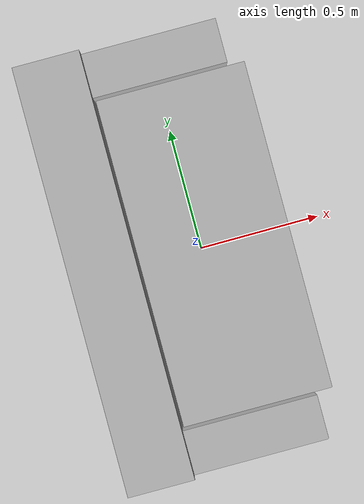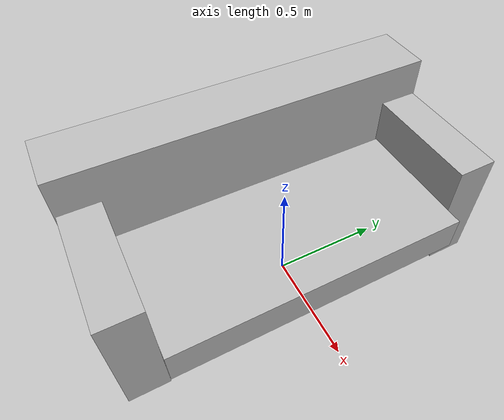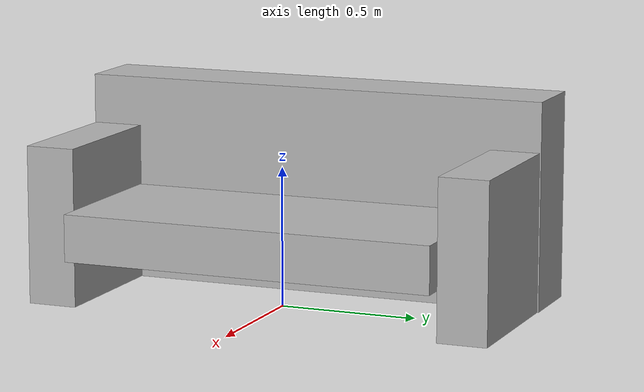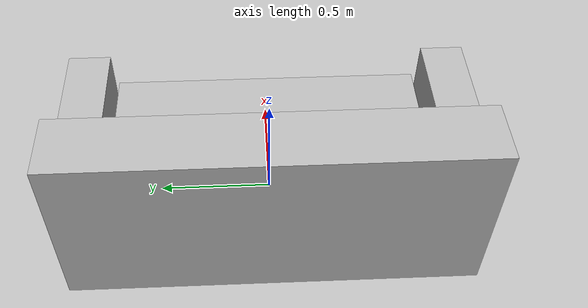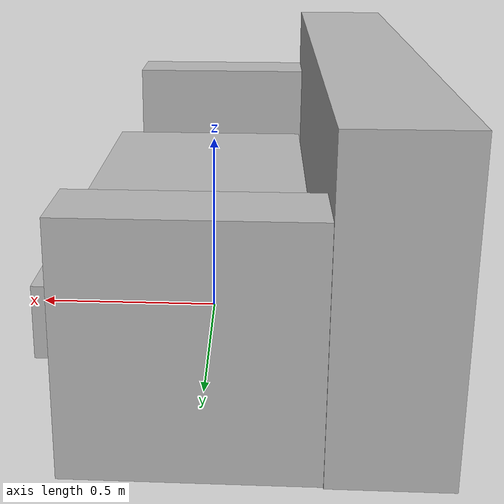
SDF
<?xml version="1.0"?>
<sdf version="1.6">
  <model name="couch">
    <link name="back">
      <collision name="back_col">
        <geometry>
          <box>
            <size>0.27 1.73 0.75</size>
          </box>
        </geometry>
      </collision>
      <visual name="back_vis">
        <geometry>
          <box>
            <size>0.27 1.73 0.75</size>
          </box>
        </geometry>
      </visual>
      <pose>-0.4 0 0.37 0 0 0</pose>
    </link>
    <link name="side_left">
      <collision name="side_left_col">
        <geometry>
          <box>
            <size>0.57 0.18 0.57</size>
          </box>
        </geometry>
      </collision>
      <visual name="side_left_vis">
        <geometry>
          <box>
            <size>0.57 0.18 0.57</size>
          </box>
        </geometry>
      </visual>
      <pose>0 -0.77 0.28 0 0 0</pose>
    </link>
    <link name="side_right">
      <collision name="side_right_col">
        <geometry>
          <box>
            <size>0.57 0.18 0.57</size>
          </box>
        </geometry>
      </collision>
      <visual name="side_right_vis">
        <geometry>
          <box>
            <size>0.57 0.18 0.57</size>
          </box>
        </geometry>
      </visual>
      <pose>0 0.77 0.28 0 0 0</pose>
    </link>
    <link name="seat">
      <collision name="seat_col">
        <geometry>
          <box>
            <size>0.62 1.36 0.17</size>
          </box>
        </geometry>
      </collision>
      <visual name="seat_vis">
        <geometry>
          <box>
            <size>0.62 1.36 0.17</size>
          </box>
        </geometry>
      </visual>
      <pose>0.05 0 0.26 0 0 0</pose>
    </link>
    <link name="on_top_of">
      <virtual_volume name="on_top_of_vv">
        <geometry>
          <box>
            <size>0.46 1.3 0.25</size>
          </box>
        </geometry>
        <pose>0.02 0.0 0.44 0 0 0</pose>
      </virtual_volume>
    </link>
    <link name="in_front_of">
      <virtual_volume name="in_front_of_vv">
        <geometry>
          <box>
            <size>0.2 1.16 0.01</size>
          </box>
        </geometry>
        <pose>0.75 0.0 0.005 0 0 0</pose>
      </virtual_volume>
    </link>
    <static>true</static>
  </model>
</sdf>
